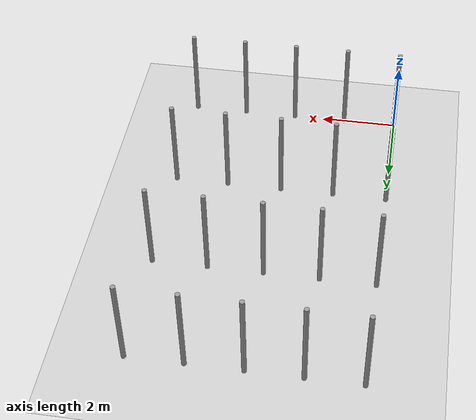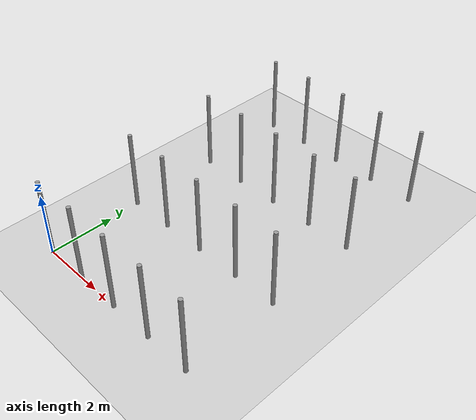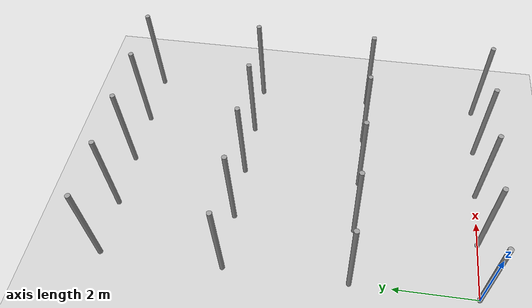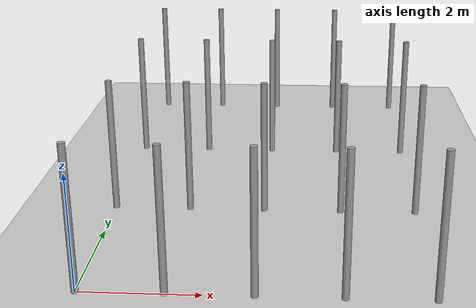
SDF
<sdf version="1.6">
 <world name="default">
  <model name="ground_plane">
   <static>1</static>
   <link name="link">
    <collision name="collision">
     <geometry><plane><normal>0 0 1</normal><size>100 100</size></plane></geometry>
     <surface><friction><ode><mu>100</mu><mu2>50</mu2></ode></friction></surface>
    </collision>
    <visual name="visual">
     <cast_shadows>0</cast_shadows>
     <geometry><plane><normal>0 0 1</normal><size>100 100</size></plane></geometry>
     <material>
      <script><uri>file://media/materials/scripts/gazebo.material</uri><name>Gazebo/Grey</name></script>
     </material>
    </visual>
   </link>
  </model>
  <model name="pole_8">
   <link name="link_0">
    <inertial>
     <mass>0.0364582</mass>
     <inertia>
      <ixx>0.00312124</ixx>
      <ixy>0</ixy>
      <ixz>0</ixz>
      <iyy>0.00312124</iyy>
      <iyz>0</iyz>
      <izz>0.00016615</izz>
     </inertia>
    </inertial>
    <visual name="visual">
     <geometry><cylinder><radius>0.06</radius><length>2.5</length></cylinder></geometry>
     <material>
      <lighting>1</lighting>
      <script><uri>file://media/materials/scripts/gazebo.material</uri><name>Gazebo/Grey</name></script>
      <ambient>0.3 0.3 0.3 1</ambient>
      <diffuse>0.7 0.7 0.7 1</diffuse>
      <specular>0.01 0.01 0.01 1</specular>
      <emissive>0 0 0 1</emissive>
      <shader type="vertex"><normal_map>__default__</normal_map></shader>
     </material>
    </visual>
    <collision name="collision">
     <geometry><cylinder><radius>0.06</radius><length>2.5</length></cylinder></geometry>
     <surface>
      <friction>
       <ode><mu>1</mu><mu2>1</mu2><fdir1>0 0 0</fdir1><slip1>0</slip1><slip2>0</slip2></ode>
       <torsional>
        <coefficient>1</coefficient>
        <patch_radius>0</patch_radius>
        <surface_radius>0</surface_radius>
        <use_patch_radius>1</use_patch_radius>
        <ode><slip>0</slip></ode>
       </torsional>
      </friction>
      <bounce><restitution_coefficient>0</restitution_coefficient><threshold>1e+06</threshold></bounce>
      <contact>
       <collide_without_contact>0</collide_without_contact>
       <collide_without_contact_bitmask>1</collide_without_contact_bitmask>
       <collide_bitmask>1</collide_bitmask>
       <ode>
        <soft_cfm>0</soft_cfm>
        <soft_erp>0.2</soft_erp>
        <kp>1e+13</kp>
        <kd>1</kd>
        <max_vel>0.01</max_vel>
        <min_depth>0</min_depth>
       </ode>
       <bullet>
        <split_impulse>1</split_impulse>
        <split_impulse_penetration_threshold>-0.01</split_impulse_penetration_threshold>
        <soft_cfm>0</soft_cfm>
        <soft_erp>0.2</soft_erp>
        <kp>1e+13</kp>
        <kd>1</kd>
       </bullet>
      </contact>
     </surface>
    </collision>
   </link>
   <static>0</static>
   <pose>1.40458 0.004334 1.25 -1e-06 -1e-06 -0.048905</pose>
  </model>
  <model name="pole_9">
   <link name="link_0">
    <inertial>
     <mass>0.0364582</mass>
     <inertia>
      <ixx>0.00312124</ixx>
      <ixy>0</ixy>
      <ixz>0</ixz>
      <iyy>0.00312124</iyy>
      <iyz>0</iyz>
      <izz>0.00016615</izz>
     </inertia>
    </inertial>
    <visual name="visual">
     <geometry><cylinder><radius>0.06</radius><length>2.5</length></cylinder></geometry>
     <material>
      <lighting>1</lighting>
      <script><uri>file://media/materials/scripts/gazebo.material</uri><name>Gazebo/Grey</name></script>
      <ambient>0.3 0.3 0.3 1</ambient>
      <diffuse>0.7 0.7 0.7 1</diffuse>
      <specular>0.01 0.01 0.01 1</specular>
      <emissive>0 0 0 1</emissive>
      <shader type="vertex"><normal_map>__default__</normal_map></shader>
     </material>
    </visual>
    <collision name="collision">
     <geometry><cylinder><radius>0.06</radius><length>2.5</length></cylinder></geometry>
     <surface>
      <friction>
       <ode><mu>1</mu><mu2>1</mu2><fdir1>0 0 0</fdir1><slip1>0</slip1><slip2>0</slip2></ode>
       <torsional>
        <coefficient>1</coefficient>
        <patch_radius>0</patch_radius>
        <surface_radius>0</surface_radius>
        <use_patch_radius>1</use_patch_radius>
        <ode><slip>0</slip></ode>
       </torsional>
      </friction>
      <bounce><restitution_coefficient>0</restitution_coefficient><threshold>1e+06</threshold></bounce>
      <contact>
       <collide_without_contact>0</collide_without_contact>
       <collide_without_contact_bitmask>1</collide_without_contact_bitmask>
       <collide_bitmask>1</collide_bitmask>
       <ode>
        <soft_cfm>0</soft_cfm>
        <soft_erp>0.2</soft_erp>
        <kp>1e+13</kp>
        <kd>1</kd>
        <max_vel>0.01</max_vel>
        <min_depth>0</min_depth>
       </ode>
       <bullet>
        <split_impulse>1</split_impulse>
        <split_impulse_penetration_threshold>-0.01</split_impulse_penetration_threshold>
        <soft_cfm>0</soft_cfm>
        <soft_erp>0.2</soft_erp>
        <kp>1e+13</kp>
        <kd>1</kd>
       </bullet>
      </contact>
     </surface>
    </collision>
   </link>
   <static>0</static>
   <pose>2.80841 0.004531 1.24999 0 -1e-06 -0.065693</pose>
  </model>
  <model name="pole_10">
   <link name="link_0">
    <inertial>
     <mass>0.0364582</mass>
     <inertia>
      <ixx>0.00312124</ixx>
      <ixy>0</ixy>
      <ixz>0</ixz>
      <iyy>0.00312124</iyy>
      <iyz>0</iyz>
      <izz>0.00016615</izz>
     </inertia>
    </inertial>
    <visual name="visual">
     <geometry><cylinder><radius>0.06</radius><length>2.5</length></cylinder></geometry>
     <material>
      <lighting>1</lighting>
      <script><uri>file://media/materials/scripts/gazebo.material</uri><name>Gazebo/Grey</name></script>
      <ambient>0.3 0.3 0.3 1</ambient>
      <diffuse>0.7 0.7 0.7 1</diffuse>
      <specular>0.01 0.01 0.01 1</specular>
      <emissive>0 0 0 1</emissive>
      <shader type="vertex"><normal_map>__default__</normal_map></shader>
     </material>
    </visual>
    <collision name="collision">
     <geometry><cylinder><radius>0.06</radius><length>2.5</length></cylinder></geometry>
     <surface>
      <friction>
       <ode><mu>1</mu><mu2>1</mu2><fdir1>0 0 0</fdir1><slip1>0</slip1><slip2>0</slip2></ode>
       <torsional>
        <coefficient>1</coefficient>
        <patch_radius>0</patch_radius>
        <surface_radius>0</surface_radius>
        <use_patch_radius>1</use_patch_radius>
        <ode><slip>0</slip></ode>
       </torsional>
      </friction>
      <bounce><restitution_coefficient>0</restitution_coefficient><threshold>1e+06</threshold></bounce>
      <contact>
       <collide_without_contact>0</collide_without_contact>
       <collide_without_contact_bitmask>1</collide_without_contact_bitmask>
       <collide_bitmask>1</collide_bitmask>
       <ode>
        <soft_cfm>0</soft_cfm>
        <soft_erp>0.2</soft_erp>
        <kp>1e+13</kp>
        <kd>1</kd>
        <max_vel>0.01</max_vel>
        <min_depth>0</min_depth>
       </ode>
       <bullet>
        <split_impulse>1</split_impulse>
        <split_impulse_penetration_threshold>-0.01</split_impulse_penetration_threshold>
        <soft_cfm>0</soft_cfm>
        <soft_erp>0.2</soft_erp>
        <kp>1e+13</kp>
        <kd>1</kd>
       </bullet>
      </contact>
     </surface>
    </collision>
   </link>
   <static>0</static>
   <pose>4.20432 0.004396 1.24999 0 0 -0.050585</pose>
  </model>
  <model name="pole_11">
   <link name="link_0">
    <inertial>
     <mass>0.0364582</mass>
     <inertia>
      <ixx>0.00312124</ixx>
      <ixy>0</ixy>
      <ixz>0</ixz>
      <iyy>0.00312124</iyy>
      <iyz>0</iyz>
      <izz>0.00016615</izz>
     </inertia>
    </inertial>
    <visual name="visual">
     <geometry><cylinder><radius>0.06</radius><length>2.5</length></cylinder></geometry>
     <material>
      <lighting>1</lighting>
      <script><uri>file://media/materials/scripts/gazebo.material</uri><name>Gazebo/Grey</name></script>
      <ambient>0.3 0.3 0.3 1</ambient>
      <diffuse>0.7 0.7 0.7 1</diffuse>
      <specular>0.01 0.01 0.01 1</specular>
      <emissive>0 0 0 1</emissive>
      <shader type="vertex"><normal_map>__default__</normal_map></shader>
     </material>
    </visual>
    <collision name="collision">
     <geometry><cylinder><radius>0.06</radius><length>2.5</length></cylinder></geometry>
     <surface>
      <friction>
       <ode><mu>1</mu><mu2>1</mu2><fdir1>0 0 0</fdir1><slip1>0</slip1><slip2>0</slip2></ode>
       <torsional>
        <coefficient>1</coefficient>
        <patch_radius>0</patch_radius>
        <surface_radius>0</surface_radius>
        <use_patch_radius>1</use_patch_radius>
        <ode><slip>0</slip></ode>
       </torsional>
      </friction>
      <bounce><restitution_coefficient>0</restitution_coefficient><threshold>1e+06</threshold></bounce>
      <contact>
       <collide_without_contact>0</collide_without_contact>
       <collide_without_contact_bitmask>1</collide_without_contact_bitmask>
       <collide_bitmask>1</collide_bitmask>
       <ode>
        <soft_cfm>0</soft_cfm>
        <soft_erp>0.2</soft_erp>
        <kp>1e+13</kp>
        <kd>1</kd>
        <max_vel>0.01</max_vel>
        <min_depth>0</min_depth>
       </ode>
       <bullet>
        <split_impulse>1</split_impulse>
        <split_impulse_penetration_threshold>-0.01</split_impulse_penetration_threshold>
        <soft_cfm>0</soft_cfm>
        <soft_erp>0.2</soft_erp>
        <kp>1e+13</kp>
        <kd>1</kd>
       </bullet>
      </contact>
     </surface>
    </collision>
   </link>
   <static>0</static>
   <pose>5.61663 0.004056 1.24999 1e-06 -3e-06 -0.051908</pose>
  </model>
  <model name="pole_11_clone">
   <link name="link_0">
    <inertial>
     <mass>0.0364582</mass>
     <inertia>
      <ixx>0.00312124</ixx>
      <ixy>0</ixy>
      <ixz>0</ixz>
      <iyy>0.00312124</iyy>
      <iyz>0</iyz>
      <izz>0.00016615</izz>
     </inertia>
    </inertial>
    <visual name="visual">
     <geometry><cylinder><radius>0.06</radius><length>2.5</length></cylinder></geometry>
     <material>
      <lighting>1</lighting>
      <script><uri>file://media/materials/scripts/gazebo.material</uri><name>Gazebo/Grey</name></script>
      <ambient>0.3 0.3 0.3 1</ambient>
      <diffuse>0.7 0.7 0.7 1</diffuse>
      <specular>0.01 0.01 0.01 1</specular>
      <emissive>0 0 0 1</emissive>
      <shader type="vertex"><normal_map>__default__</normal_map></shader>
     </material>
    </visual>
    <collision name="collision">
     <geometry><cylinder><radius>0.06</radius><length>2.5</length></cylinder></geometry>
     <surface>
      <friction>
       <ode><mu>1</mu><mu2>1</mu2><fdir1>0 0 0</fdir1><slip1>0</slip1><slip2>0</slip2></ode>
       <torsional>
        <coefficient>1</coefficient>
        <patch_radius>0</patch_radius>
        <surface_radius>0</surface_radius>
        <use_patch_radius>1</use_patch_radius>
        <ode><slip>0</slip></ode>
       </torsional>
      </friction>
      <bounce><restitution_coefficient>0</restitution_coefficient><threshold>1e+06</threshold></bounce>
      <contact>
       <collide_without_contact>0</collide_without_contact>
       <collide_without_contact_bitmask>1</collide_without_contact_bitmask>
       <collide_bitmask>1</collide_bitmask>
       <ode>
        <soft_cfm>0</soft_cfm>
        <soft_erp>0.2</soft_erp>
        <kp>1e+13</kp>
        <kd>1</kd>
        <max_vel>0.01</max_vel>
        <min_depth>0</min_depth>
       </ode>
       <bullet>
        <split_impulse>1</split_impulse>
        <split_impulse_penetration_threshold>-0.01</split_impulse_penetration_threshold>
        <soft_cfm>0</soft_cfm>
        <soft_erp>0.2</soft_erp>
        <kp>1e+13</kp>
        <kd>1</kd>
       </bullet>
      </contact>
     </surface>
    </collision>
   </link>
   <static>0</static>
   <pose>0.000584 2.98425 1.24999 0 -2e-06 -0.047811</pose>
  </model>
  <model name="pole">
   <link name="link_0">
    <inertial>
     <mass>0.0364582</mass>
     <inertia>
      <ixx>0.00312124</ixx>
      <ixy>0</ixy>
      <ixz>0</ixz>
      <iyy>0.00312124</iyy>
      <iyz>0</iyz>
      <izz>0.00016615</izz>
     </inertia>
    </inertial>
    <visual name="visual">
     <geometry><cylinder><radius>0.06</radius><length>2.5</length></cylinder></geometry>
     <material>
      <lighting>1</lighting>
      <script><uri>file://media/materials/scripts/gazebo.material</uri><name>Gazebo/Grey</name></script>
      <ambient>0.3 0.3 0.3 1</ambient>
      <diffuse>0.7 0.7 0.7 1</diffuse>
      <specular>0.01 0.01 0.01 1</specular>
      <emissive>0 0 0 1</emissive>
      <shader type="vertex"><normal_map>__default__</normal_map></shader>
     </material>
    </visual>
    <collision name="collision">
     <geometry><cylinder><radius>0.06</radius><length>2.5</length></cylinder></geometry>
     <surface>
      <friction>
       <ode><mu>1</mu><mu2>1</mu2><fdir1>0 0 0</fdir1><slip1>0</slip1><slip2>0</slip2></ode>
       <torsional>
        <coefficient>1</coefficient>
        <patch_radius>0</patch_radius>
        <surface_radius>0</surface_radius>
        <use_patch_radius>1</use_patch_radius>
        <ode><slip>0</slip></ode>
       </torsional>
      </friction>
      <bounce><restitution_coefficient>0</restitution_coefficient><threshold>1e+06</threshold></bounce>
      <contact>
       <collide_without_contact>0</collide_without_contact>
       <collide_without_contact_bitmask>1</collide_without_contact_bitmask>
       <collide_bitmask>1</collide_bitmask>
       <ode>
        <soft_cfm>0</soft_cfm>
        <soft_erp>0.2</soft_erp>
        <kp>1e+13</kp>
        <kd>1</kd>
        <max_vel>0.01</max_vel>
        <min_depth>0</min_depth>
       </ode>
       <bullet>
        <split_impulse>1</split_impulse>
        <split_impulse_penetration_threshold>-0.01</split_impulse_penetration_threshold>
        <soft_cfm>0</soft_cfm>
        <soft_erp>0.2</soft_erp>
        <kp>1e+13</kp>
        <kd>1</kd>
       </bullet>
      </contact>
     </surface>
    </collision>
   </link>
   <static>0</static>
   <pose>0.007109 5.96385 1.25 -1e-06 1e-06 -0.047287</pose>
  </model>
  <model name="pole_0">
   <link name="link_0">
    <inertial>
     <mass>0.0364582</mass>
     <inertia>
      <ixx>0.00312124</ixx>
      <ixy>0</ixy>
      <ixz>0</ixz>
      <iyy>0.00312124</iyy>
      <iyz>0</iyz>
      <izz>0.00016615</izz>
     </inertia>
    </inertial>
    <visual name="visual">
     <geometry><cylinder><radius>0.06</radius><length>2.5</length></cylinder></geometry>
     <material>
      <lighting>1</lighting>
      <script><uri>file://media/materials/scripts/gazebo.material</uri><name>Gazebo/Grey</name></script>
      <ambient>0.3 0.3 0.3 1</ambient>
      <diffuse>0.7 0.7 0.7 1</diffuse>
      <specular>0.01 0.01 0.01 1</specular>
      <emissive>0 0 0 1</emissive>
      <shader type="vertex"><normal_map>__default__</normal_map></shader>
     </material>
    </visual>
    <collision name="collision">
     <geometry><cylinder><radius>0.06</radius><length>2.5</length></cylinder></geometry>
     <surface>
      <friction>
       <ode><mu>1</mu><mu2>1</mu2><fdir1>0 0 0</fdir1><slip1>0</slip1><slip2>0</slip2></ode>
       <torsional>
        <coefficient>1</coefficient>
        <patch_radius>0</patch_radius>
        <surface_radius>0</surface_radius>
        <use_patch_radius>1</use_patch_radius>
        <ode><slip>0</slip></ode>
       </torsional>
      </friction>
      <bounce><restitution_coefficient>0</restitution_coefficient><threshold>1e+06</threshold></bounce>
      <contact>
       <collide_without_contact>0</collide_without_contact>
       <collide_without_contact_bitmask>1</collide_without_contact_bitmask>
       <collide_bitmask>1</collide_bitmask>
       <ode>
        <soft_cfm>0</soft_cfm>
        <soft_erp>0.2</soft_erp>
        <kp>1e+13</kp>
        <kd>1</kd>
        <max_vel>0.01</max_vel>
        <min_depth>0</min_depth>
       </ode>
       <bullet>
        <split_impulse>1</split_impulse>
        <split_impulse_penetration_threshold>-0.01</split_impulse_penetration_threshold>
        <soft_cfm>0</soft_cfm>
        <soft_erp>0.2</soft_erp>
        <kp>1e+13</kp>
        <kd>1</kd>
       </bullet>
      </contact>
     </surface>
    </collision>
   </link>
   <static>0</static>
   <pose>0.013891 8.94396 1.25 -1e-06 -1e-06 -0.046625</pose>
  </model>
  <model name="pole_3">
   <link name="link_0">
    <inertial>
     <mass>0.0364582</mass>
     <inertia>
      <ixx>0.00312124</ixx>
      <ixy>0</ixy>
      <ixz>0</ixz>
      <iyy>0.00312124</iyy>
      <iyz>0</iyz>
      <izz>0.00016615</izz>
     </inertia>
    </inertial>
    <visual name="visual">
     <geometry><cylinder><radius>0.06</radius><length>2.5</length></cylinder></geometry>
     <material>
      <lighting>1</lighting>
      <script><uri>file://media/materials/scripts/gazebo.material</uri><name>Gazebo/Grey</name></script>
      <ambient>0.3 0.3 0.3 1</ambient>
      <diffuse>0.7 0.7 0.7 1</diffuse>
      <specular>0.01 0.01 0.01 1</specular>
      <emissive>0 0 0 1</emissive>
      <shader type="vertex"><normal_map>__default__</normal_map></shader>
     </material>
    </visual>
    <collision name="collision">
     <geometry><cylinder><radius>0.06</radius><length>2.5</length></cylinder></geometry>
     <surface>
      <friction>
       <ode><mu>1</mu><mu2>1</mu2><fdir1>0 0 0</fdir1><slip1>0</slip1><slip2>0</slip2></ode>
       <torsional>
        <coefficient>1</coefficient>
        <patch_radius>0</patch_radius>
        <surface_radius>0</surface_radius>
        <use_patch_radius>1</use_patch_radius>
        <ode><slip>0</slip></ode>
       </torsional>
      </friction>
      <bounce><restitution_coefficient>0</restitution_coefficient><threshold>1e+06</threshold></bounce>
      <contact>
       <collide_without_contact>0</collide_without_contact>
       <collide_without_contact_bitmask>1</collide_without_contact_bitmask>
       <collide_bitmask>1</collide_bitmask>
       <ode>
        <soft_cfm>0</soft_cfm>
        <soft_erp>0.2</soft_erp>
        <kp>1e+13</kp>
        <kd>1</kd>
        <max_vel>0.01</max_vel>
        <min_depth>0</min_depth>
       </ode>
       <bullet>
        <split_impulse>1</split_impulse>
        <split_impulse_penetration_threshold>-0.01</split_impulse_penetration_threshold>
        <soft_cfm>0</soft_cfm>
        <soft_erp>0.2</soft_erp>
        <kp>1e+13</kp>
        <kd>1</kd>
       </bullet>
      </contact>
     </surface>
    </collision>
   </link>
   <static>0</static>
   <pose>1.40509 2.98392 1.24999 -0 1e-06 -0.043168</pose>
  </model>
  <model name="pole_5">
   <link name="link_0">
    <inertial>
     <mass>0.0364582</mass>
     <inertia>
      <ixx>0.00312124</ixx>
      <ixy>0</ixy>
      <ixz>0</ixz>
      <iyy>0.00312124</iyy>
      <iyz>0</iyz>
      <izz>0.00016615</izz>
     </inertia>
    </inertial>
    <visual name="visual">
     <geometry><cylinder><radius>0.06</radius><length>2.5</length></cylinder></geometry>
     <material>
      <lighting>1</lighting>
      <script><uri>file://media/materials/scripts/gazebo.material</uri><name>Gazebo/Grey</name></script>
      <ambient>0.3 0.3 0.3 1</ambient>
      <diffuse>0.7 0.7 0.7 1</diffuse>
      <specular>0.01 0.01 0.01 1</specular>
      <emissive>0 0 0 1</emissive>
      <shader type="vertex"><normal_map>__default__</normal_map></shader>
     </material>
    </visual>
    <collision name="collision">
     <geometry><cylinder><radius>0.06</radius><length>2.5</length></cylinder></geometry>
     <surface>
      <friction>
       <ode><mu>1</mu><mu2>1</mu2><fdir1>0 0 0</fdir1><slip1>0</slip1><slip2>0</slip2></ode>
       <torsional>
        <coefficient>1</coefficient>
        <patch_radius>0</patch_radius>
        <surface_radius>0</surface_radius>
        <use_patch_radius>1</use_patch_radius>
        <ode><slip>0</slip></ode>
       </torsional>
      </friction>
      <bounce><restitution_coefficient>0</restitution_coefficient><threshold>1e+06</threshold></bounce>
      <contact>
       <collide_without_contact>0</collide_without_contact>
       <collide_without_contact_bitmask>1</collide_without_contact_bitmask>
       <collide_bitmask>1</collide_bitmask>
       <ode>
        <soft_cfm>0</soft_cfm>
        <soft_erp>0.2</soft_erp>
        <kp>1e+13</kp>
        <kd>1</kd>
        <max_vel>0.01</max_vel>
        <min_depth>0</min_depth>
       </ode>
       <bullet>
        <split_impulse>1</split_impulse>
        <split_impulse_penetration_threshold>-0.01</split_impulse_penetration_threshold>
        <soft_cfm>0</soft_cfm>
        <soft_erp>0.2</soft_erp>
        <kp>1e+13</kp>
        <kd>1</kd>
       </bullet>
      </contact>
     </surface>
    </collision>
   </link>
   <static>0</static>
   <pose>2.7962 2.98396 1.25 -1e-06 -0 -0.043155</pose>
  </model>
  <model name="pole_6">
   <link name="link_0">
    <inertial>
     <mass>0.0364582</mass>
     <inertia>
      <ixx>0.00312124</ixx>
      <ixy>0</ixy>
      <ixz>0</ixz>
      <iyy>0.00312124</iyy>
      <iyz>0</iyz>
      <izz>0.00016615</izz>
     </inertia>
    </inertial>
    <visual name="visual">
     <geometry><cylinder><radius>0.06</radius><length>2.5</length></cylinder></geometry>
     <material>
      <lighting>1</lighting>
      <script><uri>file://media/materials/scripts/gazebo.material</uri><name>Gazebo/Grey</name></script>
      <ambient>0.3 0.3 0.3 1</ambient>
      <diffuse>0.7 0.7 0.7 1</diffuse>
      <specular>0.01 0.01 0.01 1</specular>
      <emissive>0 0 0 1</emissive>
      <shader type="vertex"><normal_map>__default__</normal_map></shader>
     </material>
    </visual>
    <collision name="collision">
     <geometry><cylinder><radius>0.06</radius><length>2.5</length></cylinder></geometry>
     <surface>
      <friction>
       <ode><mu>1</mu><mu2>1</mu2><fdir1>0 0 0</fdir1><slip1>0</slip1><slip2>0</slip2></ode>
       <torsional>
        <coefficient>1</coefficient>
        <patch_radius>0</patch_radius>
        <surface_radius>0</surface_radius>
        <use_patch_radius>1</use_patch_radius>
        <ode><slip>0</slip></ode>
       </torsional>
      </friction>
      <bounce><restitution_coefficient>0</restitution_coefficient><threshold>1e+06</threshold></bounce>
      <contact>
       <collide_without_contact>0</collide_without_contact>
       <collide_without_contact_bitmask>1</collide_without_contact_bitmask>
       <collide_bitmask>1</collide_bitmask>
       <ode>
        <soft_cfm>0</soft_cfm>
        <soft_erp>0.2</soft_erp>
        <kp>1e+13</kp>
        <kd>1</kd>
        <max_vel>0.01</max_vel>
        <min_depth>0</min_depth>
       </ode>
       <bullet>
        <split_impulse>1</split_impulse>
        <split_impulse_penetration_threshold>-0.01</split_impulse_penetration_threshold>
        <soft_cfm>0</soft_cfm>
        <soft_erp>0.2</soft_erp>
        <kp>1e+13</kp>
        <kd>1</kd>
       </bullet>
      </contact>
     </surface>
    </collision>
   </link>
   <static>0</static>
   <pose>4.22278 2.98404 1.24999 -1e-06 -0 -0.043529</pose>
  </model>
  <model name="pole_7">
   <link name="link_0">
    <inertial>
     <mass>0.0364582</mass>
     <inertia>
      <ixx>0.00312124</ixx>
      <ixy>0</ixy>
      <ixz>0</ixz>
      <iyy>0.00312124</iyy>
      <iyz>0</iyz>
      <izz>0.00016615</izz>
     </inertia>
    </inertial>
    <visual name="visual">
     <geometry><cylinder><radius>0.06</radius><length>2.5</length></cylinder></geometry>
     <material>
      <lighting>1</lighting>
      <script><uri>file://media/materials/scripts/gazebo.material</uri><name>Gazebo/Grey</name></script>
      <ambient>0.3 0.3 0.3 1</ambient>
      <diffuse>0.7 0.7 0.7 1</diffuse>
      <specular>0.01 0.01 0.01 1</specular>
      <emissive>0 0 0 1</emissive>
      <shader type="vertex"><normal_map>__default__</normal_map></shader>
     </material>
    </visual>
    <collision name="collision">
     <geometry><cylinder><radius>0.06</radius><length>2.5</length></cylinder></geometry>
     <surface>
      <friction>
       <ode><mu>1</mu><mu2>1</mu2><fdir1>0 0 0</fdir1><slip1>0</slip1><slip2>0</slip2></ode>
       <torsional>
        <coefficient>1</coefficient>
        <patch_radius>0</patch_radius>
        <surface_radius>0</surface_radius>
        <use_patch_radius>1</use_patch_radius>
        <ode><slip>0</slip></ode>
       </torsional>
      </friction>
      <bounce><restitution_coefficient>0</restitution_coefficient><threshold>1e+06</threshold></bounce>
      <contact>
       <collide_without_contact>0</collide_without_contact>
       <collide_without_contact_bitmask>1</collide_without_contact_bitmask>
       <collide_bitmask>1</collide_bitmask>
       <ode>
        <soft_cfm>0</soft_cfm>
        <soft_erp>0.2</soft_erp>
        <kp>1e+13</kp>
        <kd>1</kd>
        <max_vel>0.01</max_vel>
        <min_depth>0</min_depth>
       </ode>
       <bullet>
        <split_impulse>1</split_impulse>
        <split_impulse_penetration_threshold>-0.01</split_impulse_penetration_threshold>
        <soft_cfm>0</soft_cfm>
        <soft_erp>0.2</soft_erp>
        <kp>1e+13</kp>
        <kd>1</kd>
       </bullet>
      </contact>
     </surface>
    </collision>
   </link>
   <static>0</static>
   <pose>5.60769 2.98403 1.24999 -1e-06 1e-06 -0.040122</pose>
  </model>
  <model name="pole_12">
   <link name="link_0">
    <inertial>
     <mass>0.0364582</mass>
     <inertia>
      <ixx>0.00312124</ixx>
      <ixy>0</ixy>
      <ixz>0</ixz>
      <iyy>0.00312124</iyy>
      <iyz>0</iyz>
      <izz>0.00016615</izz>
     </inertia>
    </inertial>
    <visual name="visual">
     <geometry><cylinder><radius>0.06</radius><length>2.5</length></cylinder></geometry>
     <material>
      <lighting>1</lighting>
      <script><uri>file://media/materials/scripts/gazebo.material</uri><name>Gazebo/Grey</name></script>
      <ambient>0.3 0.3 0.3 1</ambient>
      <diffuse>0.7 0.7 0.7 1</diffuse>
      <specular>0.01 0.01 0.01 1</specular>
      <emissive>0 0 0 1</emissive>
      <shader type="vertex"><normal_map>__default__</normal_map></shader>
     </material>
    </visual>
    <collision name="collision">
     <geometry><cylinder><radius>0.06</radius><length>2.5</length></cylinder></geometry>
     <surface>
      <friction>
       <ode><mu>1</mu><mu2>1</mu2><fdir1>0 0 0</fdir1><slip1>0</slip1><slip2>0</slip2></ode>
       <torsional>
        <coefficient>1</coefficient>
        <patch_radius>0</patch_radius>
        <surface_radius>0</surface_radius>
        <use_patch_radius>1</use_patch_radius>
        <ode><slip>0</slip></ode>
       </torsional>
      </friction>
      <bounce><restitution_coefficient>0</restitution_coefficient><threshold>1e+06</threshold></bounce>
      <contact>
       <collide_without_contact>0</collide_without_contact>
       <collide_without_contact_bitmask>1</collide_without_contact_bitmask>
       <collide_bitmask>1</collide_bitmask>
       <ode>
        <soft_cfm>0</soft_cfm>
        <soft_erp>0.2</soft_erp>
        <kp>1e+13</kp>
        <kd>1</kd>
        <max_vel>0.01</max_vel>
        <min_depth>0</min_depth>
       </ode>
       <bullet>
        <split_impulse>1</split_impulse>
        <split_impulse_penetration_threshold>-0.01</split_impulse_penetration_threshold>
        <soft_cfm>0</soft_cfm>
        <soft_erp>0.2</soft_erp>
        <kp>1e+13</kp>
        <kd>1</kd>
       </bullet>
      </contact>
     </surface>
    </collision>
   </link>
   <static>0</static>
   <pose>1.41395 5.96379 1.25 -1e-06 -0 -0.039952</pose>
  </model>
  <model name="pole_13">
   <link name="link_0">
    <inertial>
     <mass>0.0364582</mass>
     <inertia>
      <ixx>0.00312124</ixx>
      <ixy>0</ixy>
      <ixz>0</ixz>
      <iyy>0.00312124</iyy>
      <iyz>0</iyz>
      <izz>0.00016615</izz>
     </inertia>
    </inertial>
    <visual name="visual">
     <geometry><cylinder><radius>0.06</radius><length>2.5</length></cylinder></geometry>
     <material>
      <lighting>1</lighting>
      <script><uri>file://media/materials/scripts/gazebo.material</uri><name>Gazebo/Grey</name></script>
      <ambient>0.3 0.3 0.3 1</ambient>
      <diffuse>0.7 0.7 0.7 1</diffuse>
      <specular>0.01 0.01 0.01 1</specular>
      <emissive>0 0 0 1</emissive>
      <shader type="vertex"><normal_map>__default__</normal_map></shader>
     </material>
    </visual>
    <collision name="collision">
     <geometry><cylinder><radius>0.06</radius><length>2.5</length></cylinder></geometry>
     <surface>
      <friction>
       <ode><mu>1</mu><mu2>1</mu2><fdir1>0 0 0</fdir1><slip1>0</slip1><slip2>0</slip2></ode>
       <torsional>
        <coefficient>1</coefficient>
        <patch_radius>0</patch_radius>
        <surface_radius>0</surface_radius>
        <use_patch_radius>1</use_patch_radius>
        <ode><slip>0</slip></ode>
       </torsional>
      </friction>
      <bounce><restitution_coefficient>0</restitution_coefficient><threshold>1e+06</threshold></bounce>
      <contact>
       <collide_without_contact>0</collide_without_contact>
       <collide_without_contact_bitmask>1</collide_without_contact_bitmask>
       <collide_bitmask>1</collide_bitmask>
       <ode>
        <soft_cfm>0</soft_cfm>
        <soft_erp>0.2</soft_erp>
        <kp>1e+13</kp>
        <kd>1</kd>
        <max_vel>0.01</max_vel>
        <min_depth>0</min_depth>
       </ode>
       <bullet>
        <split_impulse>1</split_impulse>
        <split_impulse_penetration_threshold>-0.01</split_impulse_penetration_threshold>
        <soft_cfm>0</soft_cfm>
        <soft_erp>0.2</soft_erp>
        <kp>1e+13</kp>
        <kd>1</kd>
       </bullet>
      </contact>
     </surface>
    </collision>
   </link>
   <static>0</static>
   <pose>2.80843 5.96419 1.24999 -1e-06 1e-06 -0.040437</pose>
  </model>
  <model name="pole_14">
   <link name="link_0">
    <inertial>
     <mass>0.0364582</mass>
     <inertia>
      <ixx>0.00312124</ixx>
      <ixy>0</ixy>
      <ixz>0</ixz>
      <iyy>0.00312124</iyy>
      <iyz>0</iyz>
      <izz>0.00016615</izz>
     </inertia>
    </inertial>
    <visual name="visual">
     <geometry><cylinder><radius>0.06</radius><length>2.5</length></cylinder></geometry>
     <material>
      <lighting>1</lighting>
      <script><uri>file://media/materials/scripts/gazebo.material</uri><name>Gazebo/Grey</name></script>
      <ambient>0.3 0.3 0.3 1</ambient>
      <diffuse>0.7 0.7 0.7 1</diffuse>
      <specular>0.01 0.01 0.01 1</specular>
      <emissive>0 0 0 1</emissive>
      <shader type="vertex"><normal_map>__default__</normal_map></shader>
     </material>
    </visual>
    <collision name="collision">
     <geometry><cylinder><radius>0.06</radius><length>2.5</length></cylinder></geometry>
     <surface>
      <friction>
       <ode><mu>1</mu><mu2>1</mu2><fdir1>0 0 0</fdir1><slip1>0</slip1><slip2>0</slip2></ode>
       <torsional>
        <coefficient>1</coefficient>
        <patch_radius>0</patch_radius>
        <surface_radius>0</surface_radius>
        <use_patch_radius>1</use_patch_radius>
        <ode><slip>0</slip></ode>
       </torsional>
      </friction>
      <bounce><restitution_coefficient>0</restitution_coefficient><threshold>1e+06</threshold></bounce>
      <contact>
       <collide_without_contact>0</collide_without_contact>
       <collide_without_contact_bitmask>1</collide_without_contact_bitmask>
       <collide_bitmask>1</collide_bitmask>
       <ode>
        <soft_cfm>0</soft_cfm>
        <soft_erp>0.2</soft_erp>
        <kp>1e+13</kp>
        <kd>1</kd>
        <max_vel>0.01</max_vel>
        <min_depth>0</min_depth>
       </ode>
       <bullet>
        <split_impulse>1</split_impulse>
        <split_impulse_penetration_threshold>-0.01</split_impulse_penetration_threshold>
        <soft_cfm>0</soft_cfm>
        <soft_erp>0.2</soft_erp>
        <kp>1e+13</kp>
        <kd>1</kd>
       </bullet>
      </contact>
     </surface>
    </collision>
   </link>
   <static>0</static>
   <pose>4.21994 5.96386 1.25 0 -2e-06 -0.041417</pose>
  </model>
  <model name="pole_15">
   <link name="link_0">
    <inertial>
     <mass>0.0364582</mass>
     <inertia>
      <ixx>0.00312124</ixx>
      <ixy>0</ixy>
      <ixz>0</ixz>
      <iyy>0.00312124</iyy>
      <iyz>0</iyz>
      <izz>0.00016615</izz>
     </inertia>
    </inertial>
    <visual name="visual">
     <geometry><cylinder><radius>0.06</radius><length>2.5</length></cylinder></geometry>
     <material>
      <lighting>1</lighting>
      <script><uri>file://media/materials/scripts/gazebo.material</uri><name>Gazebo/Grey</name></script>
      <ambient>0.3 0.3 0.3 1</ambient>
      <diffuse>0.7 0.7 0.7 1</diffuse>
      <specular>0.01 0.01 0.01 1</specular>
      <emissive>0 0 0 1</emissive>
      <shader type="vertex"><normal_map>__default__</normal_map></shader>
     </material>
    </visual>
    <collision name="collision">
     <geometry><cylinder><radius>0.06</radius><length>2.5</length></cylinder></geometry>
     <surface>
      <friction>
       <ode><mu>1</mu><mu2>1</mu2><fdir1>0 0 0</fdir1><slip1>0</slip1><slip2>0</slip2></ode>
       <torsional>
        <coefficient>1</coefficient>
        <patch_radius>0</patch_radius>
        <surface_radius>0</surface_radius>
        <use_patch_radius>1</use_patch_radius>
        <ode><slip>0</slip></ode>
       </torsional>
      </friction>
      <bounce><restitution_coefficient>0</restitution_coefficient><threshold>1e+06</threshold></bounce>
      <contact>
       <collide_without_contact>0</collide_without_contact>
       <collide_without_contact_bitmask>1</collide_without_contact_bitmask>
       <collide_bitmask>1</collide_bitmask>
       <ode>
        <soft_cfm>0</soft_cfm>
        <soft_erp>0.2</soft_erp>
        <kp>1e+13</kp>
        <kd>1</kd>
        <max_vel>0.01</max_vel>
        <min_depth>0</min_depth>
       </ode>
       <bullet>
        <split_impulse>1</split_impulse>
        <split_impulse_penetration_threshold>-0.01</split_impulse_penetration_threshold>
        <soft_cfm>0</soft_cfm>
        <soft_erp>0.2</soft_erp>
        <kp>1e+13</kp>
        <kd>1</kd>
       </bullet>
      </contact>
     </surface>
    </collision>
   </link>
   <static>0</static>
   <pose>5.62392 5.96398 1.24999 0 4e-06 -0.04109</pose>
  </model>
  <model name="pole_16">
   <link name="link_0">
    <inertial>
     <mass>0.0364582</mass>
     <inertia>
      <ixx>0.00312124</ixx>
      <ixy>0</ixy>
      <ixz>0</ixz>
      <iyy>0.00312124</iyy>
      <iyz>0</iyz>
      <izz>0.00016615</izz>
     </inertia>
    </inertial>
    <visual name="visual">
     <geometry><cylinder><radius>0.06</radius><length>2.5</length></cylinder></geometry>
     <material>
      <lighting>1</lighting>
      <script><uri>file://media/materials/scripts/gazebo.material</uri><name>Gazebo/Grey</name></script>
      <ambient>0.3 0.3 0.3 1</ambient>
      <diffuse>0.7 0.7 0.7 1</diffuse>
      <specular>0.01 0.01 0.01 1</specular>
      <emissive>0 0 0 1</emissive>
      <shader type="vertex"><normal_map>__default__</normal_map></shader>
     </material>
    </visual>
    <collision name="collision">
     <geometry><cylinder><radius>0.06</radius><length>2.5</length></cylinder></geometry>
     <surface>
      <friction>
       <ode><mu>1</mu><mu2>1</mu2><fdir1>0 0 0</fdir1><slip1>0</slip1><slip2>0</slip2></ode>
       <torsional>
        <coefficient>1</coefficient>
        <patch_radius>0</patch_radius>
        <surface_radius>0</surface_radius>
        <use_patch_radius>1</use_patch_radius>
        <ode><slip>0</slip></ode>
       </torsional>
      </friction>
      <bounce><restitution_coefficient>0</restitution_coefficient><threshold>1e+06</threshold></bounce>
      <contact>
       <collide_without_contact>0</collide_without_contact>
       <collide_without_contact_bitmask>1</collide_without_contact_bitmask>
       <collide_bitmask>1</collide_bitmask>
       <ode>
        <soft_cfm>0</soft_cfm>
        <soft_erp>0.2</soft_erp>
        <kp>1e+13</kp>
        <kd>1</kd>
        <max_vel>0.01</max_vel>
        <min_depth>0</min_depth>
       </ode>
       <bullet>
        <split_impulse>1</split_impulse>
        <split_impulse_penetration_threshold>-0.01</split_impulse_penetration_threshold>
        <soft_cfm>0</soft_cfm>
        <soft_erp>0.2</soft_erp>
        <kp>1e+13</kp>
        <kd>1</kd>
       </bullet>
      </contact>
     </surface>
    </collision>
   </link>
   <static>0</static>
   <pose>1.41353 8.94332 1.24999 -1e-06 -0 -0.046166</pose>
  </model>
  <model name="pole_17">
   <link name="link_0">
    <inertial>
     <mass>0.0364582</mass>
     <inertia>
      <ixx>0.00312124</ixx>
      <ixy>0</ixy>
      <ixz>0</ixz>
      <iyy>0.00312124</iyy>
      <iyz>0</iyz>
      <izz>0.00016615</izz>
     </inertia>
    </inertial>
    <visual name="visual">
     <geometry><cylinder><radius>0.06</radius><length>2.5</length></cylinder></geometry>
     <material>
      <lighting>1</lighting>
      <script><uri>file://media/materials/scripts/gazebo.material</uri><name>Gazebo/Grey</name></script>
      <ambient>0.3 0.3 0.3 1</ambient>
      <diffuse>0.7 0.7 0.7 1</diffuse>
      <specular>0.01 0.01 0.01 1</specular>
      <emissive>0 0 0 1</emissive>
      <shader type="vertex"><normal_map>__default__</normal_map></shader>
     </material>
    </visual>
    <collision name="collision">
     <geometry><cylinder><radius>0.06</radius><length>2.5</length></cylinder></geometry>
     <surface>
      <friction>
       <ode><mu>1</mu><mu2>1</mu2><fdir1>0 0 0</fdir1><slip1>0</slip1><slip2>0</slip2></ode>
       <torsional>
        <coefficient>1</coefficient>
        <patch_radius>0</patch_radius>
        <surface_radius>0</surface_radius>
        <use_patch_radius>1</use_patch_radius>
        <ode><slip>0</slip></ode>
       </torsional>
      </friction>
      <bounce><restitution_coefficient>0</restitution_coefficient><threshold>1e+06</threshold></bounce>
      <contact>
       <collide_without_contact>0</collide_without_contact>
       <collide_without_contact_bitmask>1</collide_without_contact_bitmask>
       <collide_bitmask>1</collide_bitmask>
       <ode>
        <soft_cfm>0</soft_cfm>
        <soft_erp>0.2</soft_erp>
        <kp>1e+13</kp>
        <kd>1</kd>
        <max_vel>0.01</max_vel>
        <min_depth>0</min_depth>
       </ode>
       <bullet>
        <split_impulse>1</split_impulse>
        <split_impulse_penetration_threshold>-0.01</split_impulse_penetration_threshold>
        <soft_cfm>0</soft_cfm>
        <soft_erp>0.2</soft_erp>
        <kp>1e+13</kp>
        <kd>1</kd>
       </bullet>
      </contact>
     </surface>
    </collision>
   </link>
   <static>0</static>
   <pose>2.80024 8.94336 1.25 -1e-06 -1e-06 -0.039576</pose>
  </model>
  <model name="pole_18">
   <link name="link_0">
    <inertial>
     <mass>0.0364582</mass>
     <inertia>
      <ixx>0.00312124</ixx>
      <ixy>0</ixy>
      <ixz>0</ixz>
      <iyy>0.00312124</iyy>
      <iyz>0</iyz>
      <izz>0.00016615</izz>
     </inertia>
    </inertial>
    <visual name="visual">
     <geometry><cylinder><radius>0.06</radius><length>2.5</length></cylinder></geometry>
     <material>
      <lighting>1</lighting>
      <script><uri>file://media/materials/scripts/gazebo.material</uri><name>Gazebo/Grey</name></script>
      <ambient>0.3 0.3 0.3 1</ambient>
      <diffuse>0.7 0.7 0.7 1</diffuse>
      <specular>0.01 0.01 0.01 1</specular>
      <emissive>0 0 0 1</emissive>
      <shader type="vertex"><normal_map>__default__</normal_map></shader>
     </material>
    </visual>
    <collision name="collision">
     <geometry><cylinder><radius>0.06</radius><length>2.5</length></cylinder></geometry>
     <surface>
      <friction>
       <ode><mu>1</mu><mu2>1</mu2><fdir1>0 0 0</fdir1><slip1>0</slip1><slip2>0</slip2></ode>
       <torsional>
        <coefficient>1</coefficient>
        <patch_radius>0</patch_radius>
        <surface_radius>0</surface_radius>
        <use_patch_radius>1</use_patch_radius>
        <ode><slip>0</slip></ode>
       </torsional>
      </friction>
      <bounce><restitution_coefficient>0</restitution_coefficient><threshold>1e+06</threshold></bounce>
      <contact>
       <collide_without_contact>0</collide_without_contact>
       <collide_without_contact_bitmask>1</collide_without_contact_bitmask>
       <collide_bitmask>1</collide_bitmask>
       <ode>
        <soft_cfm>0</soft_cfm>
        <soft_erp>0.2</soft_erp>
        <kp>1e+13</kp>
        <kd>1</kd>
        <max_vel>0.01</max_vel>
        <min_depth>0</min_depth>
       </ode>
       <bullet>
        <split_impulse>1</split_impulse>
        <split_impulse_penetration_threshold>-0.01</split_impulse_penetration_threshold>
        <soft_cfm>0</soft_cfm>
        <soft_erp>0.2</soft_erp>
        <kp>1e+13</kp>
        <kd>1</kd>
       </bullet>
      </contact>
     </surface>
    </collision>
   </link>
   <static>0</static>
   <pose>4.20421 8.94366 1.25 1e-06 2e-06 -0.038251</pose>
  </model>
  <model name="pole_19">
   <link name="link_0">
    <inertial>
     <mass>0.0364582</mass>
     <inertia>
      <ixx>0.00312124</ixx>
      <ixy>0</ixy>
      <ixz>0</ixz>
      <iyy>0.00312124</iyy>
      <iyz>0</iyz>
      <izz>0.00016615</izz>
     </inertia>
    </inertial>
    <visual name="visual">
     <geometry><cylinder><radius>0.06</radius><length>2.5</length></cylinder></geometry>
     <material>
      <lighting>1</lighting>
      <script><uri>file://media/materials/scripts/gazebo.material</uri><name>Gazebo/Grey</name></script>
      <ambient>0.3 0.3 0.3 1</ambient>
      <diffuse>0.7 0.7 0.7 1</diffuse>
      <specular>0.01 0.01 0.01 1</specular>
      <emissive>0 0 0 1</emissive>
      <shader type="vertex"><normal_map>__default__</normal_map></shader>
     </material>
    </visual>
    <collision name="collision">
     <geometry><cylinder><radius>0.06</radius><length>2.5</length></cylinder></geometry>
     <surface>
      <friction>
       <ode><mu>1</mu><mu2>1</mu2><fdir1>0 0 0</fdir1><slip1>0</slip1><slip2>0</slip2></ode>
       <torsional>
        <coefficient>1</coefficient>
        <patch_radius>0</patch_radius>
        <surface_radius>0</surface_radius>
        <use_patch_radius>1</use_patch_radius>
        <ode><slip>0</slip></ode>
       </torsional>
      </friction>
      <bounce><restitution_coefficient>0</restitution_coefficient><threshold>1e+06</threshold></bounce>
      <contact>
       <collide_without_contact>0</collide_without_contact>
       <collide_without_contact_bitmask>1</collide_without_contact_bitmask>
       <collide_bitmask>1</collide_bitmask>
       <ode>
        <soft_cfm>0</soft_cfm>
        <soft_erp>0.2</soft_erp>
        <kp>1e+13</kp>
        <kd>1</kd>
        <max_vel>0.01</max_vel>
        <min_depth>0</min_depth>
       </ode>
       <bullet>
        <split_impulse>1</split_impulse>
        <split_impulse_penetration_threshold>-0.01</split_impulse_penetration_threshold>
        <soft_cfm>0</soft_cfm>
        <soft_erp>0.2</soft_erp>
        <kp>1e+13</kp>
        <kd>1</kd>
       </bullet>
      </contact>
     </surface>
    </collision>
   </link>
   <static>0</static>
   <pose>5.62972 8.94334 1.24999 0 -1e-06 -0.03947</pose>
  </model>
  <model name="pole_4">
   <link name="link_0">
    <inertial>
     <mass>0.0364582</mass>
     <inertia>
      <ixx>0.00312124</ixx>
      <ixy>0</ixy>
      <ixz>0</ixz>
      <iyy>0.00312124</iyy>
      <iyz>0</iyz>
      <izz>0.00016615</izz>
     </inertia>
    </inertial>
    <visual name="visual">
     <geometry><cylinder><radius>0.06</radius><length>2.5</length></cylinder></geometry>
     <material>
      <lighting>1</lighting>
      <script><uri>file://media/materials/scripts/gazebo.material</uri><name>Gazebo/Grey</name></script>
      <ambient>0.3 0.3 0.3 1</ambient>
      <diffuse>0.7 0.7 0.7 1</diffuse>
      <specular>0.01 0.01 0.01 1</specular>
      <emissive>0 0 0 1</emissive>
      <shader type="vertex"><normal_map>__default__</normal_map></shader>
     </material>
    </visual>
    <collision name="collision">
     <geometry><cylinder><radius>0.06</radius><length>2.5</length></cylinder></geometry>
     <surface>
      <friction>
       <ode><mu>1</mu><mu2>1</mu2><fdir1>0 0 0</fdir1><slip1>0</slip1><slip2>0</slip2></ode>
       <torsional>
        <coefficient>1</coefficient>
        <patch_radius>0</patch_radius>
        <surface_radius>0</surface_radius>
        <use_patch_radius>1</use_patch_radius>
        <ode><slip>0</slip></ode>
       </torsional>
      </friction>
      <bounce><restitution_coefficient>0</restitution_coefficient><threshold>1e+06</threshold></bounce>
      <contact>
       <collide_without_contact>0</collide_without_contact>
       <collide_without_contact_bitmask>1</collide_without_contact_bitmask>
       <collide_bitmask>1</collide_bitmask>
       <ode>
        <soft_cfm>0</soft_cfm>
        <soft_erp>0.2</soft_erp>
        <kp>1e+13</kp>
        <kd>1</kd>
        <max_vel>0.01</max_vel>
        <min_depth>0</min_depth>
       </ode>
       <bullet>
        <split_impulse>1</split_impulse>
        <split_impulse_penetration_threshold>-0.01</split_impulse_penetration_threshold>
        <soft_cfm>0</soft_cfm>
        <soft_erp>0.2</soft_erp>
        <kp>1e+13</kp>
        <kd>1</kd>
       </bullet>
      </contact>
     </surface>
    </collision>
   </link>
   <static>0</static>
   <pose>0.007364 0.002863 1.24999 -1e-06 -0 -0.033003</pose>
  </model>
 </world>
</sdf>
